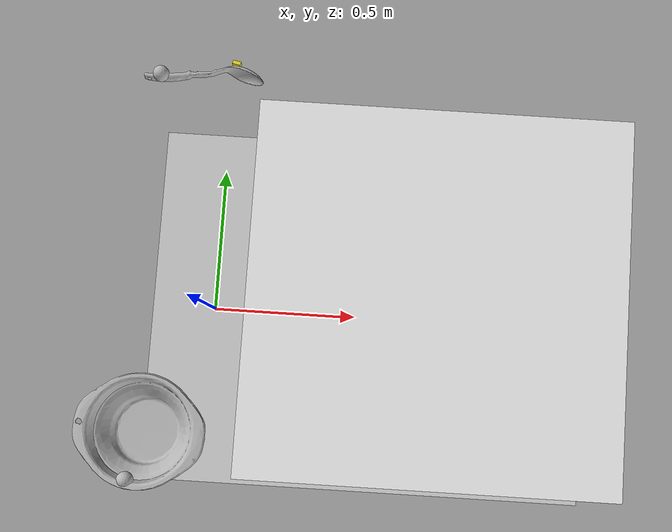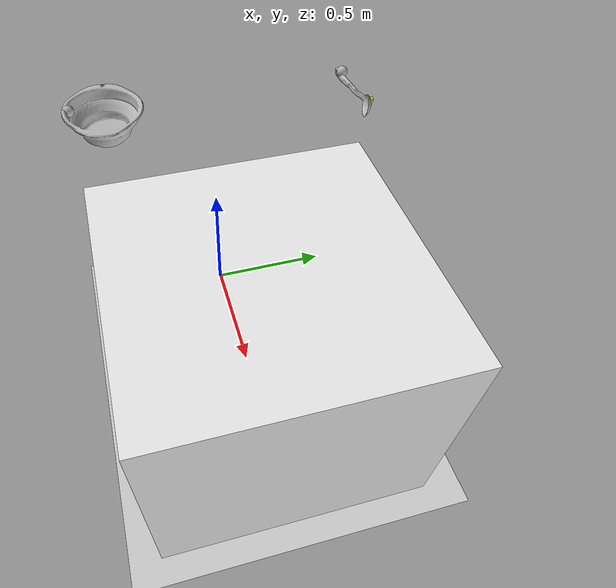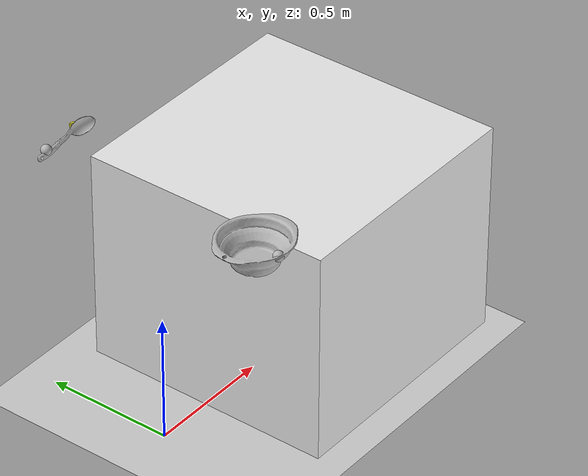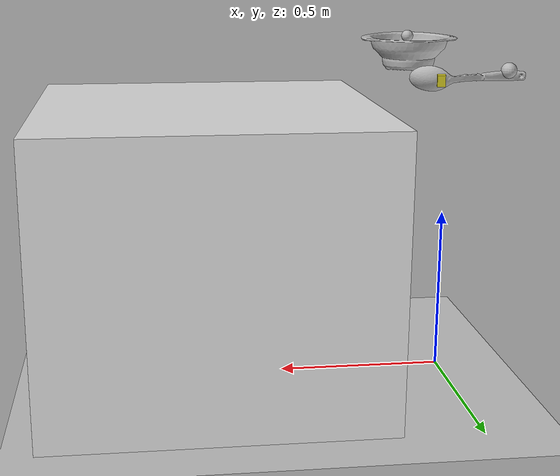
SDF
<?xml version='1.0'?>
<sdf version="1.6">
    <world name="big_bowl_serving_spoon_p">

        <include>
            <uri>model://sun</uri>
        </include>

        <include>
            <uri>model://ground_plane</uri>
        </include>

        <include>
            <uri>model://b_serving_spoon</uri>
            <pose>0.112572 0.508131 0.984633 1.382835 0.015399 0.080779</pose>
        </include>

        <include>
            <uri>model://butter_box</uri>
            <pose>0.184618 0.538336 0.981783 3.036340 1.368170 -1.866241</pose>
            <plugin name="stick" filename="libStickPlugin.so">
              <parentLinkName>link</parentLinkName>
              <childLinkName>b_serving_spoon::link</childLinkName>
              <force>5</force>
            </plugin>
        </include>

        <include>
            <uri>model://b_big_bowl</uri>
            <pose>0.024164 -0.383989 0.959287 -0.017186 -0.000884 -0.101566</pose>
        </include>

        <include>
            <uri>model://b_kitchen_isle</uri>
            <pose>0.729232 0 0 0 0 0</pose>
        </include>

        <!-- Left Gripper -->
        <include>
            <uri>model://gripper</uri>
            <name>left_ee</name>
            <pose>0 0.5 1 0 0 0</pose>

            <plugin name="l_position_controller" filename="libposition_controller_plugin.so">
              <linkName>link</linkName>
              <referenceFrameName>base_link</referenceFrameName>
              <targetFrameName>l_gripper_tool_frame</targetFrameName>
            </plugin>

            <plugin name="l_grip" filename="libQGripPlugin.so">
              <parentLinkName>link</parentLinkName>
              <childLinkName>b_serving_spoon::link</childLinkName>
              <relativeTranslation>0.113754242659 -0.0011588409543 -0.0106302052736</relativeTranslation>
              <relativeRotationXYZW>0.666600346565 0.0425760671496 0.0381869524717 0.743218243122</relativeRotationXYZW>
            </plugin>
        </include>

        <!-- Right Gripper -->
        <include>
            <uri>model://gripper</uri>
            <name>right_ee</name>
            <pose>0 -0.5 1 1.547368 1.402341 1.343703</pose>

            <plugin name="r_position_controller" filename="libposition_controller_plugin.so">
              <linkName>link</linkName>
              <referenceFrameName>base_link</referenceFrameName>
              <targetFrameName>r_gripper_tool_frame</targetFrameName>
            </plugin>

            <plugin name="r_grip" filename="libQGripPlugin.so">
              <parentLinkName>link</parentLinkName>
              <childLinkName>b_big_bowl::link</childLinkName>
              <relativeTranslation>0.0698283538222 -0.101200096309 -0.00832558982074</relativeTranslation>
              <relativeRotationXYZW>0.0882896855474 -0.714526772499 0.152498945594 0.677053391933</relativeRotationXYZW>
            </plugin>

        </include>

        <plugin name="feature_visualization_plugin" filename="libgiskard_visualization_plugin.so"></plugin>

        <gui>
            <camera name='user_camera'>
                <pose>1.700789 1.175709 1.670612 0 0.375643 -2.675000</pose>
                <view_controller>orbit</view_controller>
            </camera>
        </gui>

    </world>
</sdf>

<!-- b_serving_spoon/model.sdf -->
<sdf version='1.6'>
	<model name='b_serving_spoon'>
		<static>false</static>
		<pose>0 0 0 0 0 0</pose>

		<link name='link'>
			<inertial>
			<mass>0.15</mass>
			<pose>0.0019638 -6.1791e-05 0.00018857 0 0 0</pose>
				<inertia>
					<ixx>0.0000075</ixx>
					<iyy>0.00112875</iyy>
					<izz>0.00112875</izz>
				</inertia>
			</inertial>
			<sensor name="tool_contact_sensor" type="contact">
				<always_on>true</always_on>
				<update_rate>30.0</update_rate>
				<contact>
					<collision>collision</collision>
				</contact>
				<plugin name="tool_bumper" filename="libgazebo_ros_bumper.so">
					<bumperTopicName>tool_contact_sensor_state</bumperTopicName>
					<frameName>world</frameName>
				</plugin>
			</sensor>
			<collision name='collision'>
				<geometry>
					<mesh>
						<uri>model://b_serving_spoon/b_serving_spoon.dae</uri>
					</mesh>
				</geometry>
				<surface>
					<friction>
						<ode>
							<mu>0.2</mu>
							<mu2>0.2</mu2>
						</ode>
					</friction>
				</surface>
			</collision>
			<visual name='visual'>
				<geometry>
					<mesh>
						<uri>model://b_serving_spoon/b_serving_spoon.dae</uri>
					</mesh>
				</geometry>
			</visual>
		</link>
	</model>
</sdf>

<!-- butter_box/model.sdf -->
<sdf version='1.6'>
    <model name='butter_box'>
        <static>false</static>
        <pose>0 0 0 0 0 0</pose>
        <link name='link'>
            <pose>0 0 0 0 0 0</pose>
            <inertial>
                <mass>0.001</mass>
                <pose>0 0 0 0 0 0</pose>
                <inertia>
                    <ixx>0.00000004167</ixx>
                    <iyy>0.00000008333</iyy>
                    <izz>0.00000010833</izz>
                    <ixy>0</ixy>
                    <ixz>0</ixz>
                    <iyz>0</iyz>
                </inertia>
            </inertial>
            <collision name='collision'>
                <geometry>
                    <box>
                        <size>0.03 0.02 0.01</size>
                    </box>
                </geometry>
                <surface>
                    <friction>
                        <ode>
                            <mu>0.2</mu>
                            <mu2>0.2</mu2>
                        </ode>
                    </friction>
                </surface>
            </collision>
            <visual name='visual'>
                <geometry>
                    <box>
                        <size>0.03 0.02 0.01</size>
                    </box>
                </geometry>
                <material>
                    <script>
                        <name>Gazebo/Yellow</name>
                        <uri>file://media/materials/scripts/gazebo.material</uri>
                    </script>
                </material>
            </visual>
        </link>
    </model>
</sdf>

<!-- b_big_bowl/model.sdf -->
<sdf version='1.6'>
	<model name='b_big_bowl'>
		<static>false</static>
		<pose>0 0 0 0 0 0</pose>

		<link name='link'>
			<inertial>
			<mass>0.35</mass>
			<pose>-0.0022966 -0.0039142 0.0041527 0 0 0</pose>
				<inertia>
					<ixx>0.0009479167</ixx>
					<iyy>0.0009479167</iyy>
					<izz>0.00175</izz>
				</inertia>
			</inertial>
			<collision name='collision'>
				<geometry>
					<mesh>
						<uri>model://b_big_bowl/b_big_bowl.dae</uri>
					</mesh>
				</geometry>
				<surface>
					<friction>
						<ode>
							<mu>0.2</mu>
							<mu2>0.2</mu2>
						</ode>
					</friction>
				</surface>
			</collision>
			<visual name='visual'>
				<geometry>
					<mesh>
						<uri>model://b_big_bowl/b_big_bowl.dae</uri>
					</mesh>
				</geometry>
			</visual>
		</link>
	</model>
</sdf>

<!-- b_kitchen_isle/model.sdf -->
<sdf version='1.6'>
    <model name='b_kitchen_isle'>
        <static>false</static>

        <pose>0 0 0 0 0 0</pose>

        <link name='link'>
            <pose>0 0 0.425 0 0 0</pose>

            <gravity>false</gravity>

           <collision name='collision'>
               <geometry>
                   <box>
                        <size>1.0 1.0 0.85</size>
                    </box>
               </geometry>
           </collision>

            <visual name='visual'>
                <geometry>
                   <box>
                        <size>1.0 1.0 0.85</size>
                    </box>
               </geometry>
               <material>
                    <script>
                        <name>Gazebo/White</name>
                        <uri>file://media/materials/scripts/gazebo.material</uri>
                    </script>
                </material>
            </visual>

        </link>
    </model>
</sdf>

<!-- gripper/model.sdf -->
<sdf version='1.6'>
    <model name='gripper'>
        <static>false</static>
        <allow_auto_disable>false</allow_auto_disable>

        <pose>0 0 0 0 0 0</pose>

        <link name='link'>
            <pose>0 0 0 0 0 0</pose>

            <gravity>false</gravity>

            <visual name='visual'>
                <geometry>
                    <sphere>
                        <radius>0.02</radius>
                    </sphere>
                </geometry>
            </visual>

        </link>
    </model>
</sdf>
